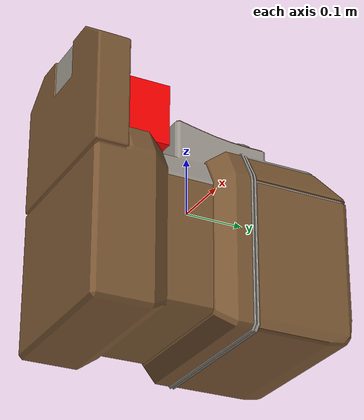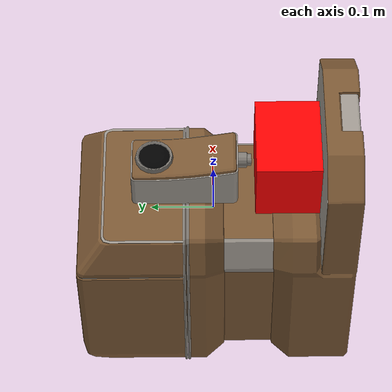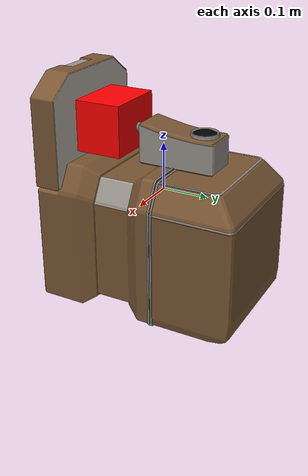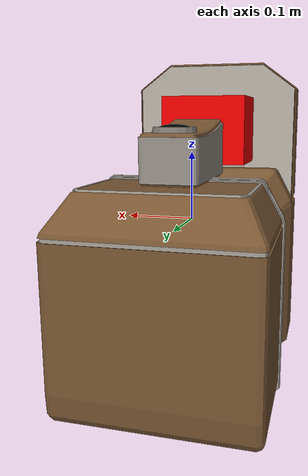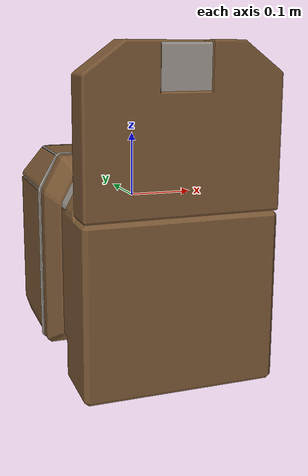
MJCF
<mujoco model="coffee_machine_2">
  <compiler autolimits="true" boundmass="0.01" angle="radian"/>
  <default>
    <default class="/">
      <default class="__VISUAL_MJT__">
        <geom contype="0" conaffinity="0" group="0"/>
      </default>
      <default class="__STRUCTURAL_MJT__">
        <geom contype="8" conaffinity="15" group="4" friction="0.90000000000000002 0.90000000000000002 0.001" solref="0.025000000000000001 1" solimp="0.998 0.998 0.001"/>
      </default>
      <default class="__DYNAMIC_MJT__">
        <geom contype="1" conaffinity="15" group="4" friction="0.90000000000000002 0.90000000000000002 0.001" solref="0.025000000000000001 1" solimp="0.998 0.998 0.001"/>
      </default>
    </default>
  </default>
  <asset>
    <material name="material_coffee_machine_backup_mat" class="/" specular="0.5" shininess="0.5" rgba="0.5 0.5 0.5 1"/>
    <material name="material_Coffee_Machine_Readout_Mat_Off" class="/" specular="0.5" shininess="0.5" rgba="0 0 0 1"/>
    <texture name="Coffee_Machine_Decal_Mat" type="2d" file="Coffee_Machine_Decal_AlbedoTransparency.png"/>
    <material name="material_Coffee_Machine_Decal_Mat" class="/" texture="Coffee_Machine_Decal_Mat" specular="0.5" shininess="0.5" rgba="1 1 1 1"/>
    <texture name="Coffee_Machine_Metal_Mat" type="2d" file="MetalBumpy_AlbedoTransparency.png"/>
    <material name="material_Coffee_Machine_Metal_Mat" class="/" texture="Coffee_Machine_Metal_Mat" specular="0.5" shininess="0.5" rgba="0.66176469999999998 0.66176469999999998 0.66176469999999998 1"/>
    <texture name="Coffee_Machine_Secondary2_Color_Mat" type="2d" file="BrushedIron_AlbedoTransparency.png"/>
    <material name="material_Coffee_Machine_Secondary2_Color_Mat" class="/" texture="Coffee_Machine_Secondary2_Color_Mat" specular="0.5" shininess="0.5" rgba="0.80882350000000003 0.80882350000000003 0.80882350000000003 1"/>
    <texture name="Coffee_Machine_Primary2_Color_Mat" type="2d" file="BumpyPlastic_Albedo.png"/>
    <material name="material_Coffee_Machine_Primary2_Color_Mat" class="/" texture="Coffee_Machine_Primary2_Color_Mat" specular="0.5" shininess="0.5" rgba="0.6323529 0.46849269999999998 0.29292820000000003 1"/>
    <mesh name="coffee_machine_2_coffee_machine_2_0" class="/" file="coffee_machine_2_coffee_machine_2/coffee_machine_2_coffee_machine_2_0.obj" scale="1 1 1"/>
    <mesh name="coffee_machine_2_coffee_machine_2_1" class="/" file="coffee_machine_2_coffee_machine_2/coffee_machine_2_coffee_machine_2_1.obj" scale="1 1 1"/>
    <mesh name="coffee_machine_2_coffee_machine_2_2" class="/" file="coffee_machine_2_coffee_machine_2/coffee_machine_2_coffee_machine_2_2.obj" scale="1 1 1"/>
    <mesh name="coffee_machine_2_coffee_machine_2_3" class="/" file="coffee_machine_2_coffee_machine_2/coffee_machine_2_coffee_machine_2_3.obj" scale="1 1 1"/>
    <mesh name="coffee_machine_2_coffee_machine_2_4" class="/" file="coffee_machine_2_coffee_machine_2/coffee_machine_2_coffee_machine_2_4.obj" scale="1 1 1"/>
    <mesh name="coffee_machine_2_coffee_machine_2_5" class="/" file="coffee_machine_2_coffee_machine_2/coffee_machine_2_coffee_machine_2_5.obj" scale="1 1 1"/>
  </asset>
  <worldbody>
    <body name="coffee_machine_2">
      <joint name="coffee_machine_2_free" class="/" type="free" pos="0 0 0" axis="0 0 1" stiffness="0" range="0 0" armature="0" damping="0.10000000000000001" frictionloss="0"/>
      <body name="coffee_machine_2_coffee_machine_2" pos="-0 -0.22112000000000001 -0.10685" quat="1 0 0 0">
        <geom name="coffee_machine_2_coffee_machine_2_0" class="__VISUAL_MJT__" type="mesh" material="material_coffee_machine_backup_mat" shellinertia="true" mesh="coffee_machine_2_coffee_machine_2_0"/>
        <geom name="coffee_machine_2_coffee_machine_2_1" class="__VISUAL_MJT__" type="mesh" material="material_Coffee_Machine_Readout_Mat_Off" shellinertia="false" mesh="coffee_machine_2_coffee_machine_2_1"/>
        <geom name="coffee_machine_2_coffee_machine_2_2" class="__VISUAL_MJT__" type="mesh" material="material_Coffee_Machine_Decal_Mat" shellinertia="false" mesh="coffee_machine_2_coffee_machine_2_2"/>
        <geom name="coffee_machine_2_coffee_machine_2_3" class="__VISUAL_MJT__" type="mesh" material="material_Coffee_Machine_Metal_Mat" shellinertia="false" mesh="coffee_machine_2_coffee_machine_2_3"/>
        <geom name="coffee_machine_2_coffee_machine_2_4" class="__VISUAL_MJT__" type="mesh" material="material_Coffee_Machine_Secondary2_Color_Mat" shellinertia="false" mesh="coffee_machine_2_coffee_machine_2_4"/>
        <geom name="coffee_machine_2_coffee_machine_2_5" class="__VISUAL_MJT__" type="mesh" material="material_Coffee_Machine_Primary2_Color_Mat" shellinertia="false" mesh="coffee_machine_2_coffee_machine_2_5"/>
        <site name="coffee_machine_2_Receptacle_0" class="/" type="box" rgba="1 0 0 1" size="0.067368164658546448 0.04994654655456543 0.054075688123703003" pos="-0 0.10694654285907745 0.23744449019432068" quat="1 0 0 0"/>
        <geom name="coffee_machine_2_PrimitiveCollider_0" class="__DYNAMIC_MJT__" type="box" size="0.14734183251857758 0.22112220525741577 0.15443253517150879" rgba="0 1 0 1" pos="-0 0.22112220525741577 0.015895485877990723" quat="1 0 0 0"/>
        <geom name="coffee_machine_2_PrimitiveCollider_1" class="__DYNAMIC_MJT__" type="box" size="0.14734183251857758 0.027117490768432617 0.11679649353027344" rgba="0 1 0 1" pos="-0 0.027117490768432617 0.23543906211853027" quat="1 0 0 0"/>
        <geom name="coffee_machine_2_PrimitiveCollider_2" class="__DYNAMIC_MJT__" type="box" size="0.043003086000680923 0.084915637969970703 0.044212698936462402" rgba="0 1 0 1" pos="-0 0.26771926879882812 0.21214056015014648" quat="1 0 0 0"/>
      </body>
    </body>
  </worldbody>
</mujoco>
